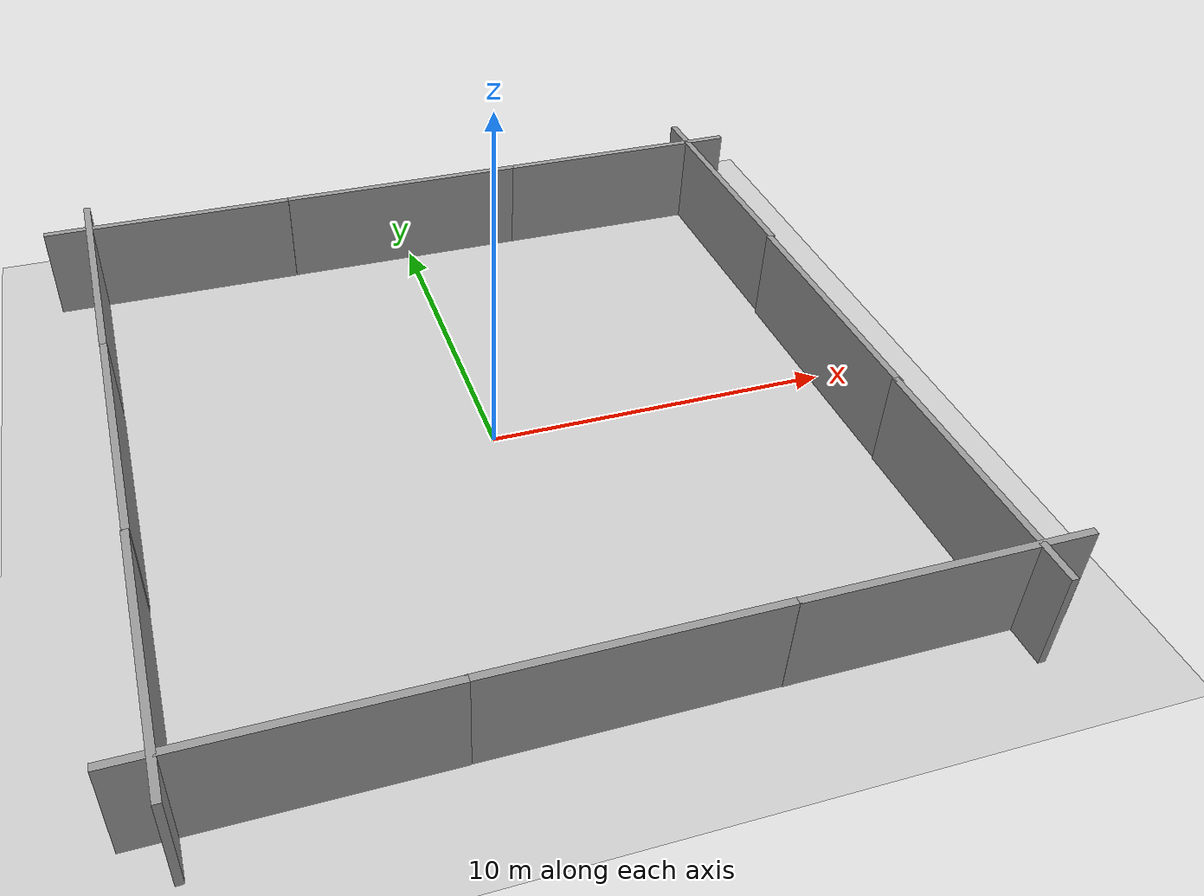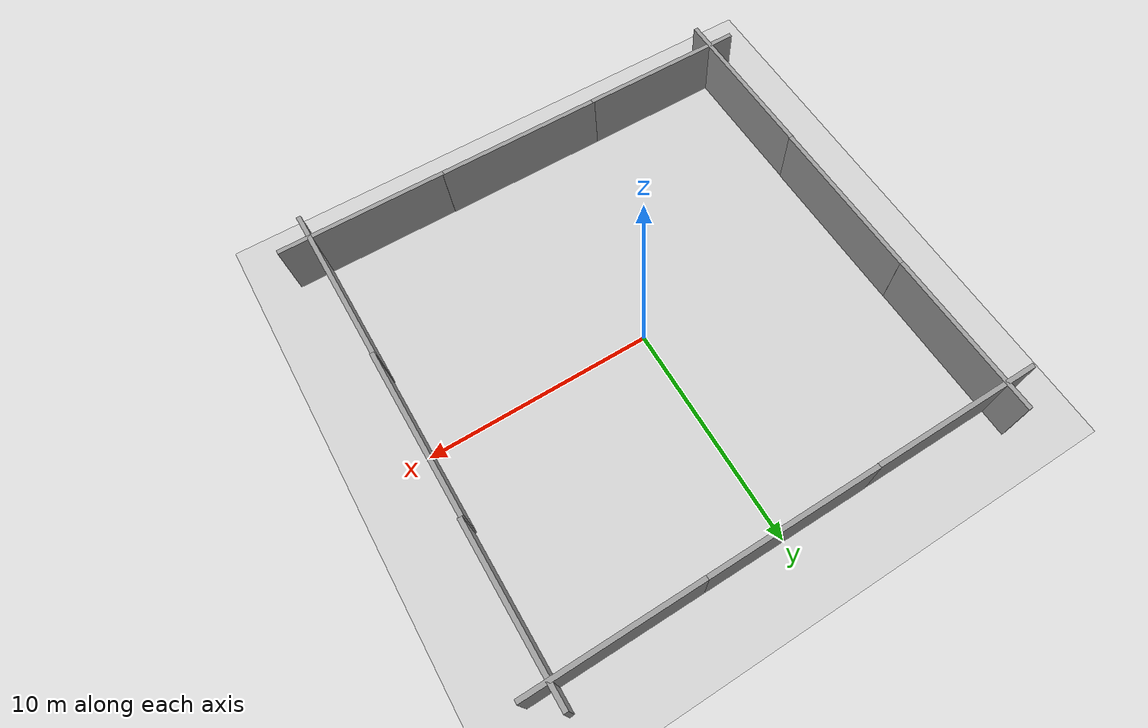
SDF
<sdf version="1.6">
 <world name="default">
  <light name="sun" type="directional">
   <pose>0 0 10 0 -0 0</pose>
   <diffuse>0.8 0.8 0.8 1</diffuse>
   <specular>0.2 0.2 0.2 1</specular>
   <attenuation>
    <range>1000</range>
    <constant>0.9</constant>
    <linear>0.01</linear>
    <quadratic>0.001</quadratic>
   </attenuation>
   <direction>-0.5 0.1 -0.9</direction>
  </light>
  <model name="ground_plane">
   <static>1</static>
   <link name="link">
    <collision name="collision">
     <geometry><plane><normal>0 0 1</normal><size>100 100</size></plane></geometry>
     <surface><friction><ode><mu>100</mu><mu2>50</mu2></ode></friction></surface>
    </collision>
    <visual name="visual">
     <cast_shadows>0</cast_shadows>
     <geometry><plane><normal>0 0 1</normal><size>100 100</size></plane></geometry>
     <material>
      <script><uri>file://media/materials/scripts/gazebo.material</uri><name>Gazebo/Grey</name></script>
     </material>
    </visual>
   </link>
  </model>
  <gravity>0 0 -9.8</gravity>
  <magnetic_field>6e-06 2.3e-05 -4.2e-05</magnetic_field>
  <atmosphere type="adiabatic"/>
  <physics name="default_physics" default="0" type="ode">
   <max_step_size>0.001</max_step_size>
   <real_time_factor>1</real_time_factor>
   <real_time_update_rate>1000</real_time_update_rate>
  </physics>
  <scene><ambient>0.4 0.4 0.4 1</ambient><background>0.7 0.7 0.7 1</background><shadows>1</shadows></scene>
  <spherical_coordinates>
   <surface_model>EARTH_WGS84</surface_model>
   <latitude_deg>0</latitude_deg>
   <longitude_deg>0</longitude_deg>
   <elevation>0</elevation>
   <heading_deg>0</heading_deg>
  </spherical_coordinates>
  <model name="grey_wall">
   <static>1</static>
   <link name="link">
    <pose>0 0 1.4 0 -0 0</pose>
    <collision name="collision"><geometry><box><size>7.5 0.2 2.8</size></box></geometry></collision>
    <visual name="visual">
     <cast_shadows>0</cast_shadows>
     <geometry><box><size>7.5 0.2 2.8</size></box></geometry>
     <material>
      <script>
       <uri>model://grey_wall/materials/scripts</uri>
       <uri>model://grey_wall/materials/textures</uri>
       <name>vrc/grey_wall</name>
      </script>
     </material>
    </visual>
   </link>
   <pose>-0.142435 9.95074 0 0 -0 0</pose>
  </model>
  <model name="grey_wall_clone">
   <static>1</static>
   <link name="link">
    <pose>0 0 1.4 0 -0 0</pose>
    <collision name="collision"><geometry><box><size>7.5 0.2 2.8</size></box></geometry></collision>
    <visual name="visual">
     <cast_shadows>0</cast_shadows>
     <geometry><box><size>7.5 0.2 2.8</size></box></geometry>
     <material>
      <script>
       <uri>model://grey_wall/materials/scripts</uri>
       <uri>model://grey_wall/materials/textures</uri>
       <name>vrc/grey_wall</name>
      </script>
     </material>
    </visual>
   </link>
   <pose>-7.64639 9.94134 -0.00224 0 -0 0</pose>
  </model>
  <model name="grey_wall_clone_clone">
   <static>1</static>
   <link name="link">
    <pose>0 0 1.4 0 -0 0</pose>
    <collision name="collision"><geometry><box><size>7.5 0.2 2.8</size></box></geometry></collision>
    <visual name="visual">
     <cast_shadows>0</cast_shadows>
     <geometry><box><size>7.5 0.2 2.8</size></box></geometry>
     <material>
      <script>
       <uri>model://grey_wall/materials/scripts</uri>
       <uri>model://grey_wall/materials/textures</uri>
       <name>vrc/grey_wall</name>
      </script>
     </material>
    </visual>
   </link>
   <pose>7.31046 9.94955 -0.00224 0 -0 0</pose>
  </model>
  <model name="grey_wall_clone_clone_0">
   <static>1</static>
   <link name="link">
    <pose>0 0 1.4 0 -0 0</pose>
    <collision name="collision"><geometry><box><size>7.5 0.2 2.8</size></box></geometry></collision>
    <visual name="visual">
     <cast_shadows>0</cast_shadows>
     <geometry><box><size>7.5 0.2 2.8</size></box></geometry>
     <material>
      <script>
       <uri>model://grey_wall/materials/scripts</uri>
       <uri>model://grey_wall/materials/textures</uri>
       <name>vrc/grey_wall</name>
      </script>
     </material>
    </visual>
   </link>
   <pose>0.177577 -10.0358 -0.00224 0 -0 0</pose>
  </model>
  <model name="grey_wall_clone_clone_1">
   <static>1</static>
   <link name="link">
    <pose>0 0 1.4 0 -0 0</pose>
    <collision name="collision"><geometry><box><size>7.5 0.2 2.8</size></box></geometry></collision>
    <visual name="visual">
     <cast_shadows>0</cast_shadows>
     <geometry><box><size>7.5 0.2 2.8</size></box></geometry>
     <material>
      <script>
       <uri>model://grey_wall/materials/scripts</uri>
       <uri>model://grey_wall/materials/textures</uri>
       <name>vrc/grey_wall</name>
      </script>
     </material>
    </visual>
   </link>
   <pose>-7.24216 -10.0425 -0.00224 0 -0 0</pose>
  </model>
  <model name="grey_wall_clone_clone_2">
   <static>1</static>
   <link name="link">
    <pose>0 0 1.4 0 -0 0</pose>
    <collision name="collision"><geometry><box><size>7.5 0.2 2.8</size></box></geometry></collision>
    <visual name="visual">
     <cast_shadows>0</cast_shadows>
     <geometry><box><size>7.5 0.2 2.8</size></box></geometry>
     <material>
      <script>
       <uri>model://grey_wall/materials/scripts</uri>
       <uri>model://grey_wall/materials/textures</uri>
       <name>vrc/grey_wall</name>
      </script>
     </material>
    </visual>
   </link>
   <pose>7.61107 -10.0426 -0.00224 0 -0 0</pose>
  </model>
  <model name="grey_wall_clone_clone_3">
   <static>1</static>
   <link name="link">
    <pose>0 0 1.4 0 -0 0</pose>
    <collision name="collision"><geometry><box><size>7.5 0.2 2.8</size></box></geometry></collision>
    <visual name="visual">
     <cast_shadows>0</cast_shadows>
     <geometry><box><size>7.5 0.2 2.8</size></box></geometry>
     <material>
      <script>
       <uri>model://grey_wall/materials/scripts</uri>
       <uri>model://grey_wall/materials/textures</uri>
       <name>vrc/grey_wall</name>
      </script>
     </material>
    </visual>
   </link>
   <pose>-9.92478 -0.007041 -0.00224 0 0 -1.55922</pose>
  </model>
  <model name="grey_wall_clone_clone_3_clone">
   <static>1</static>
   <link name="link">
    <pose>0 0 1.4 0 -0 0</pose>
    <collision name="collision"><geometry><box><size>7.5 0.2 2.8</size></box></geometry></collision>
    <visual name="visual">
     <cast_shadows>0</cast_shadows>
     <geometry><box><size>7.5 0.2 2.8</size></box></geometry>
     <material>
      <script>
       <uri>model://grey_wall/materials/scripts</uri>
       <uri>model://grey_wall/materials/textures</uri>
       <name>vrc/grey_wall</name>
      </script>
     </material>
    </visual>
   </link>
   <pose>-10.021 7.46073 -0.00224 0 0 -1.55922</pose>
  </model>
  <model name="grey_wall_clone_clone_3_clone_0">
   <static>1</static>
   <link name="link">
    <pose>0 0 1.4 0 -0 0</pose>
    <collision name="collision"><geometry><box><size>7.5 0.2 2.8</size></box></geometry></collision>
    <visual name="visual">
     <cast_shadows>0</cast_shadows>
     <geometry><box><size>7.5 0.2 2.8</size></box></geometry>
     <material>
      <script>
       <uri>model://grey_wall/materials/scripts</uri>
       <uri>model://grey_wall/materials/textures</uri>
       <name>vrc/grey_wall</name>
      </script>
     </material>
    </visual>
   </link>
   <pose>-9.85708 -7.46273 -0.00224 0 0 -1.55922</pose>
  </model>
  <model name="grey_wall_clone_clone_3_clone_1">
   <static>1</static>
   <link name="link">
    <pose>0 0 1.4 0 -0 0</pose>
    <collision name="collision"><geometry><box><size>7.5 0.2 2.8</size></box></geometry></collision>
    <visual name="visual">
     <cast_shadows>0</cast_shadows>
     <geometry><box><size>7.5 0.2 2.8</size></box></geometry>
     <material>
      <script>
       <uri>model://grey_wall/materials/scripts</uri>
       <uri>model://grey_wall/materials/textures</uri>
       <name>vrc/grey_wall</name>
      </script>
     </material>
    </visual>
   </link>
   <pose>9.88042 -0.141506 -0.00224 0 0 -1.55922</pose>
  </model>
  <model name="grey_wall_clone_clone_3_clone_2">
   <static>1</static>
   <link name="link">
    <pose>0 0 1.4 0 -0 0</pose>
    <collision name="collision"><geometry><box><size>7.5 0.2 2.8</size></box></geometry></collision>
    <visual name="visual">
     <cast_shadows>0</cast_shadows>
     <geometry><box><size>7.5 0.2 2.8</size></box></geometry>
     <material>
      <script>
       <uri>model://grey_wall/materials/scripts</uri>
       <uri>model://grey_wall/materials/textures</uri>
       <name>vrc/grey_wall</name>
      </script>
     </material>
    </visual>
   </link>
   <pose>9.86057 7.33902 -0.00224 0 0 -1.55922</pose>
  </model>
  <model name="grey_wall_clone_clone_3_clone_3">
   <static>1</static>
   <link name="link">
    <pose>0 0 1.4 0 -0 0</pose>
    <collision name="collision"><geometry><box><size>7.5 0.2 2.8</size></box></geometry></collision>
    <visual name="visual">
     <cast_shadows>0</cast_shadows>
     <geometry><box><size>7.5 0.2 2.8</size></box></geometry>
     <material>
      <script>
       <uri>model://grey_wall/materials/scripts</uri>
       <uri>model://grey_wall/materials/textures</uri>
       <name>vrc/grey_wall</name>
      </script>
     </material>
    </visual>
   </link>
   <pose>9.92755 -7.45996 -0.00224 0 0 -1.55922</pose>
  </model>
 </world>
</sdf>
